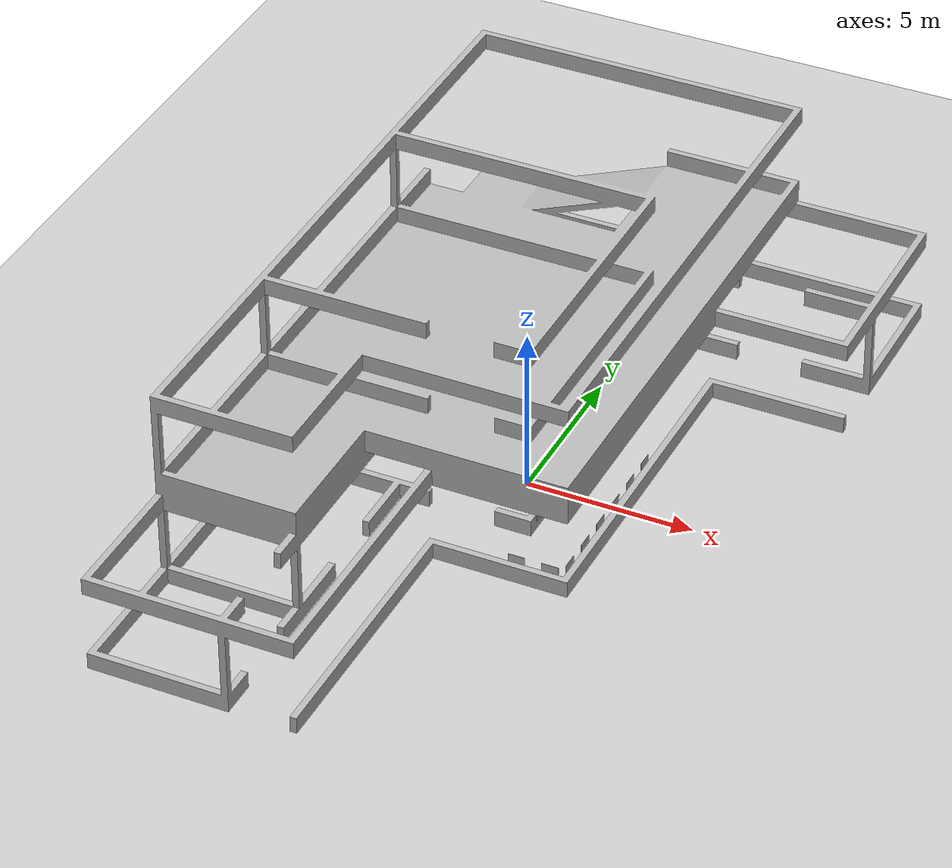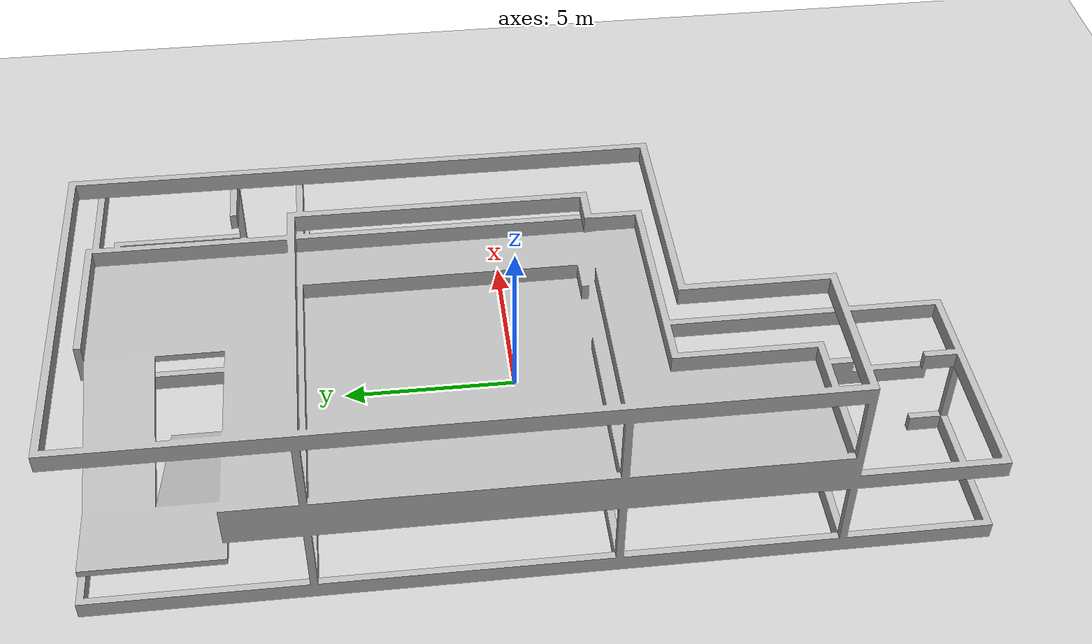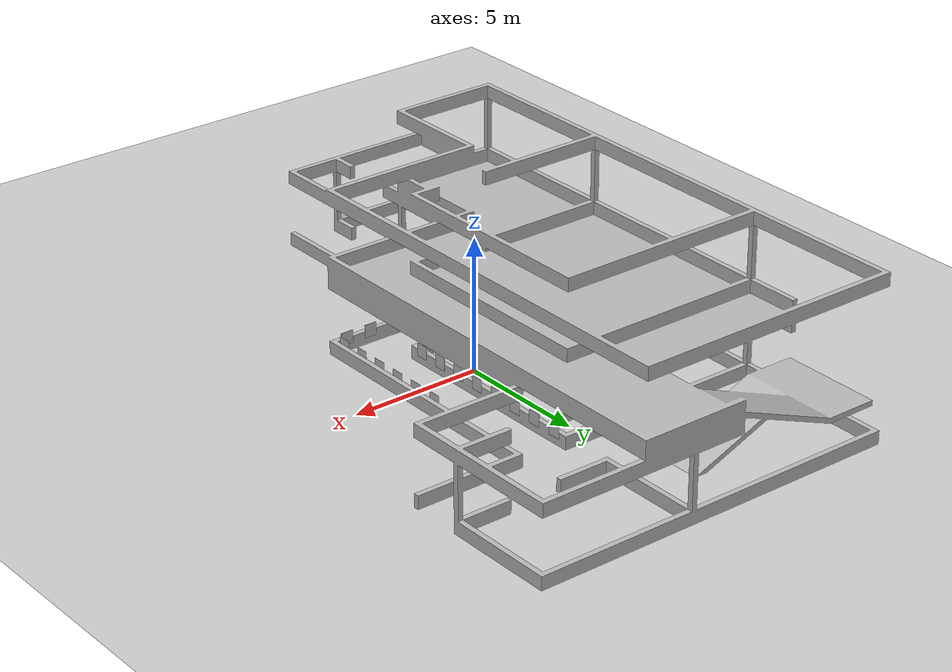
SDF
<sdf version="1.4">
 <world name="default">
  <include><uri>model://ground_plane</uri></include>
  <include><uri>model://sun</uri></include>
  <include><uri>file://models/imaginary</uri></include>
  <include><pose>1.5 -3.9 0.25 0 0 1.5707</pose><uri>model://marker18</uri></include>
  <include><pose>2.5 -3.9 0.25 0 0 1.5707</pose><uri>model://marker19</uri></include>
  <include><pose>1.1 -1.5 0.25 0 0 0</pose><uri>model://marker20</uri></include>
  <include><pose>1.1 -0.5 0.25 0 0 0</pose><uri>model://marker21</uri></include>
  <include><pose>1.1 0.5 0.25 0 0 0</pose><uri>model://marker22</uri></include>
  <include><pose>1.1 1.5 0.25 0 0 0</pose><uri>model://marker23</uri></include>
  <include><pose>1.1 2.5 0.25 0 0 0</pose><uri>model://marker24</uri></include>
  <include><pose>1.1 3.5 0.25 0 0 0</pose><uri>model://marker25</uri></include>
  <include><pose>1.1 4.5 0.25 0 0 0</pose><uri>model://marker26</uri></include>
  <include><pose>1.1 5.5 0.25 0 0 0</pose><uri>model://marker27</uri></include>
  <include><pose>2.9 -3.5 0.25 0 0 3.14159</pose><uri>model://marker28</uri></include>
  <include><pose>2.9 -2.5 0.25 0 0 3.14159</pose><uri>model://marker29</uri></include>
  <include><pose>2.9 -1.5 0.25 0 0 3.14159</pose><uri>model://marker30</uri></include>
  <include><pose>2.9 -0.5 0.25 0 0 3.14159</pose><uri>model://marker31</uri></include>
  <include><pose>2.9 0.5 0.25 0 0 3.14159</pose><uri>model://marker32</uri></include>
  <include><pose>2.9 1.5 0.25 0 0 3.14159</pose><uri>model://marker33</uri></include>
 </world>
</sdf>

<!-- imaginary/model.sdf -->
<sdf version="1.4">
<model name="imaginary">
  <pose>0 0 3.1 0 0 0</pose>
  <static>true</static>
    <link name="link">
      <collision name="collision">
        <geometry>
          <mesh><uri>file://models/imaginary/imaginary.stl</uri></mesh>
        </geometry>
      </collision>
      <visual name="visual">
        <geometry>
          <mesh><uri>file://models/imaginary/imaginary.stl</uri></mesh>
        </geometry>
      </visual>
    </link>
  </model>
</sdf>

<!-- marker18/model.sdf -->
<sdf version="1.6">
  <model name="Marker18">
    <static>true</static>
    <link name="link">
      <visual name="visual">
        <geometry>
          <mesh>
            <uri>file:////home/vagrant/catkin_ws/src/cp3_base/models//marker18/marker18/meshes/Marker18.dae</uri>
          </mesh>
        </geometry>
      </visual>
    </link>
  </model>
</sdf>

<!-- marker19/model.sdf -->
<sdf version="1.6">
  <model name="Marker19">
    <static>true</static>
    <link name="link">
      <visual name="visual">
        <geometry>
          <mesh>
            <uri>file:////home/vagrant/catkin_ws/src/cp3_base/models//marker19/marker19/meshes/Marker19.dae</uri>
          </mesh>
        </geometry>
      </visual>
    </link>
  </model>
</sdf>

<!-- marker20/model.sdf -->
<sdf version="1.6">
  <model name="Marker20">
    <static>true</static>
    <link name="link">
      <visual name="visual">
        <geometry>
          <mesh>
            <uri>file:////home/vagrant/catkin_ws/src/cp3_base/models//marker20/marker20/meshes/Marker20.dae</uri>
          </mesh>
        </geometry>
      </visual>
    </link>
  </model>
</sdf>

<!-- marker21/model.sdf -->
<sdf version="1.6">
  <model name="Marker21">
    <static>true</static>
    <link name="link">
      <visual name="visual">
        <geometry>
          <mesh>
            <uri>file:////home/vagrant/catkin_ws/src/cp3_base/models//marker21/marker21/meshes/Marker21.dae</uri>
          </mesh>
        </geometry>
      </visual>
    </link>
  </model>
</sdf>

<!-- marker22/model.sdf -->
<sdf version="1.6">
  <model name="Marker22">
    <static>true</static>
    <link name="link">
      <visual name="visual">
        <geometry>
          <mesh>
            <uri>file:////home/vagrant/catkin_ws/src/cp3_base/models//marker22/marker22/meshes/Marker22.dae</uri>
          </mesh>
        </geometry>
      </visual>
    </link>
  </model>
</sdf>

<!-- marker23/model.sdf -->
<sdf version="1.6">
  <model name="Marker23">
    <static>true</static>
    <link name="link">
      <visual name="visual">
        <geometry>
          <mesh>
            <uri>file:////home/vagrant/catkin_ws/src/cp3_base/models//marker23/marker23/meshes/Marker23.dae</uri>
          </mesh>
        </geometry>
      </visual>
    </link>
  </model>
</sdf>

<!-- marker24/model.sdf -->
<sdf version="1.6">
  <model name="Marker24">
    <static>true</static>
    <link name="link">
      <visual name="visual">
        <geometry>
          <mesh>
            <uri>file:////home/vagrant/catkin_ws/src/cp3_base/models//marker24/marker24/meshes/Marker24.dae</uri>
          </mesh>
        </geometry>
      </visual>
    </link>
  </model>
</sdf>

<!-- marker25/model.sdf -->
<sdf version="1.6">
  <model name="Marker25">
    <static>true</static>
    <link name="link">
      <visual name="visual">
        <geometry>
          <mesh>
            <uri>file:////home/vagrant/catkin_ws/src/cp3_base/models//marker25/marker25/meshes/Marker25.dae</uri>
          </mesh>
        </geometry>
      </visual>
    </link>
  </model>
</sdf>

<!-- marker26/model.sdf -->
<sdf version="1.6">
  <model name="Marker26">
    <static>true</static>
    <link name="link">
      <visual name="visual">
        <geometry>
          <mesh>
            <uri>file:////home/vagrant/catkin_ws/src/cp3_base/models//marker26/marker26/meshes/Marker26.dae</uri>
          </mesh>
        </geometry>
      </visual>
    </link>
  </model>
</sdf>

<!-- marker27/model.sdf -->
<sdf version="1.6">
  <model name="Marker27">
    <static>true</static>
    <link name="link">
      <visual name="visual">
        <geometry>
          <mesh>
            <uri>file:////home/vagrant/catkin_ws/src/cp3_base/models//marker27/marker27/meshes/Marker27.dae</uri>
          </mesh>
        </geometry>
      </visual>
    </link>
  </model>
</sdf>

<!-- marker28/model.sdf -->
<sdf version="1.6">
  <model name="Marker28">
    <static>true</static>
    <link name="link">
      <visual name="visual">
        <geometry>
          <mesh>
            <uri>file:////home/vagrant/catkin_ws/src/cp3_base/models//marker28/marker28/meshes/Marker28.dae</uri>
          </mesh>
        </geometry>
      </visual>
    </link>
  </model>
</sdf>

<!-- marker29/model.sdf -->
<sdf version="1.6">
  <model name="Marker29">
    <static>true</static>
    <link name="link">
      <visual name="visual">
        <geometry>
          <mesh>
            <uri>file:////home/vagrant/catkin_ws/src/cp3_base/models//marker29/marker29/meshes/Marker29.dae</uri>
          </mesh>
        </geometry>
      </visual>
    </link>
  </model>
</sdf>

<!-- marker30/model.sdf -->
<sdf version="1.6">
  <model name="Marker30">
    <static>true</static>
    <link name="link">
      <visual name="visual">
        <geometry>
          <mesh>
            <uri>file:////home/vagrant/catkin_ws/src/cp3_base/models//marker30/marker30/meshes/Marker30.dae</uri>
          </mesh>
        </geometry>
      </visual>
    </link>
  </model>
</sdf>

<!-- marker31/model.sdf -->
<sdf version="1.6">
  <model name="Marker31">
    <static>true</static>
    <link name="link">
      <visual name="visual">
        <geometry>
          <mesh>
            <uri>file:////home/vagrant/catkin_ws/src/cp3_base/models//marker31/marker31/meshes/Marker31.dae</uri>
          </mesh>
        </geometry>
      </visual>
    </link>
  </model>
</sdf>

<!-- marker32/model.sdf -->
<sdf version="1.6">
  <model name="Marker32">
    <static>true</static>
    <link name="link">
      <visual name="visual">
        <geometry>
          <mesh>
            <uri>file:////home/vagrant/catkin_ws/src/cp3_base/models//marker32/marker32/meshes/Marker32.dae</uri>
          </mesh>
        </geometry>
      </visual>
    </link>
  </model>
</sdf>

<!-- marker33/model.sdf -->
<sdf version="1.6">
  <model name="Marker33">
    <static>true</static>
    <link name="link">
      <visual name="visual">
        <geometry>
          <mesh>
            <uri>file:////home/vagrant/catkin_ws/src/cp3_base/models//marker33/marker33/meshes/Marker33.dae</uri>
          </mesh>
        </geometry>
      </visual>
    </link>
  </model>
</sdf>
